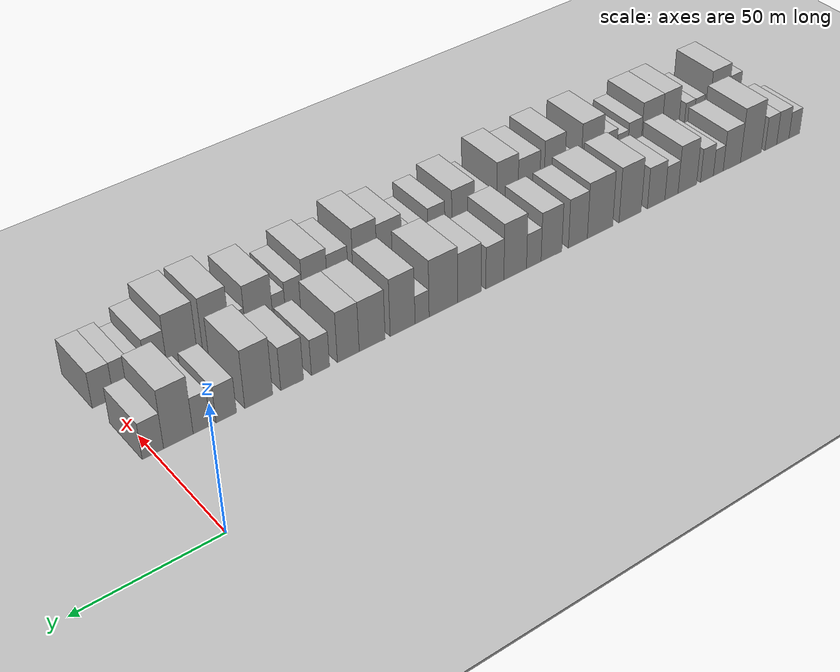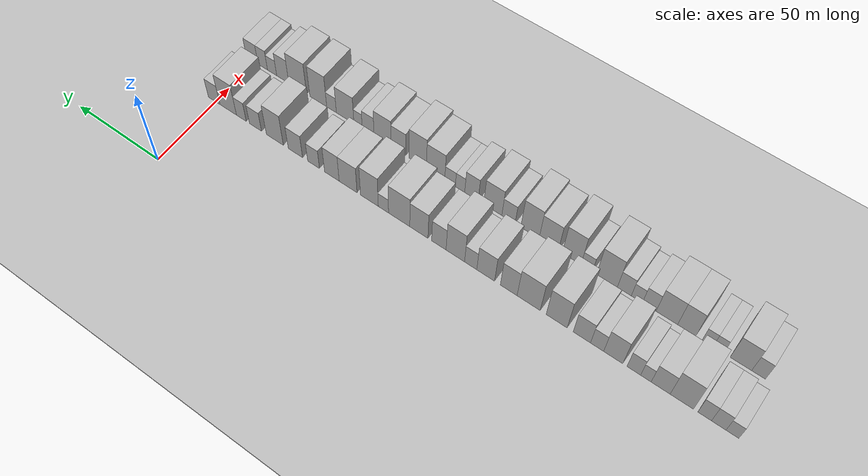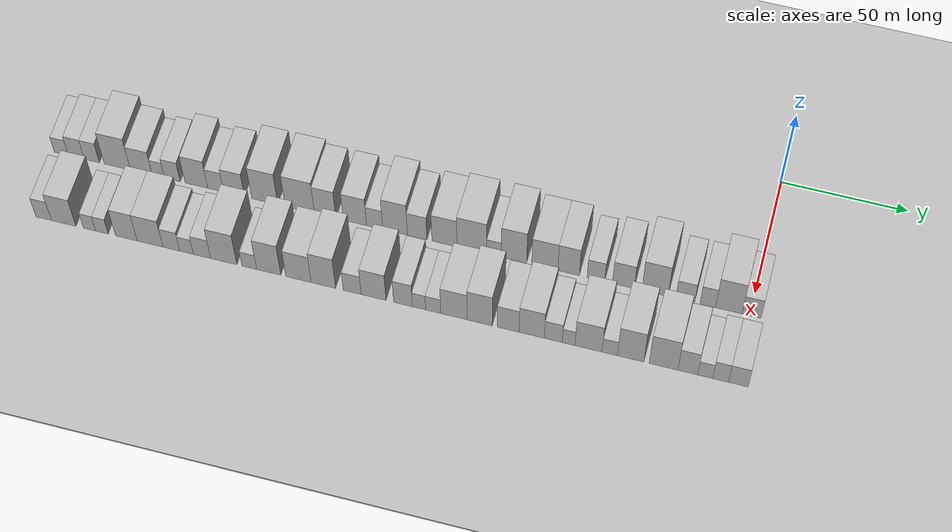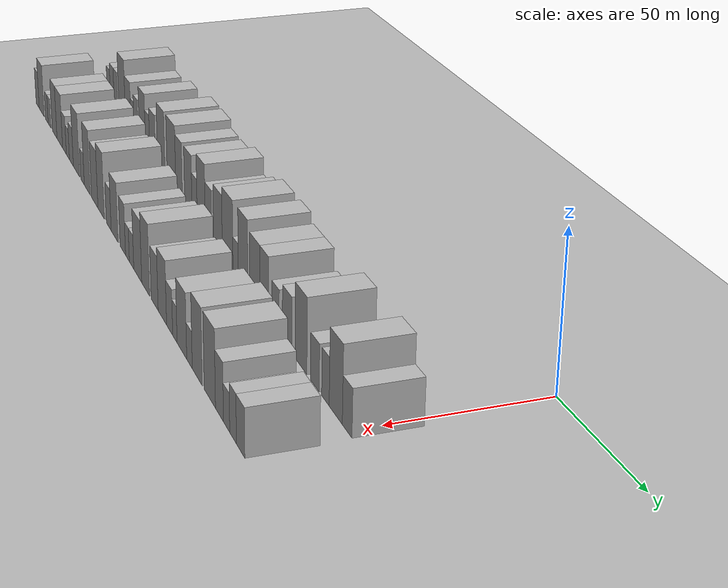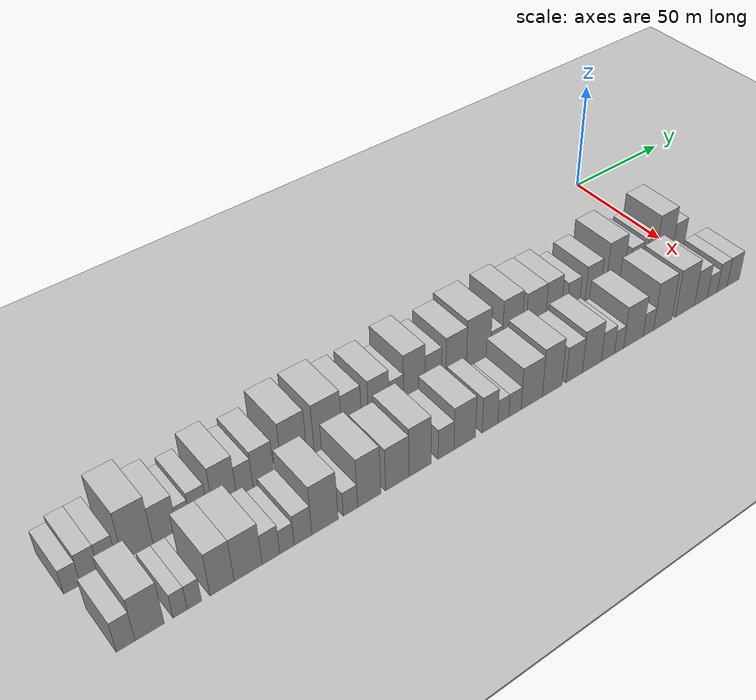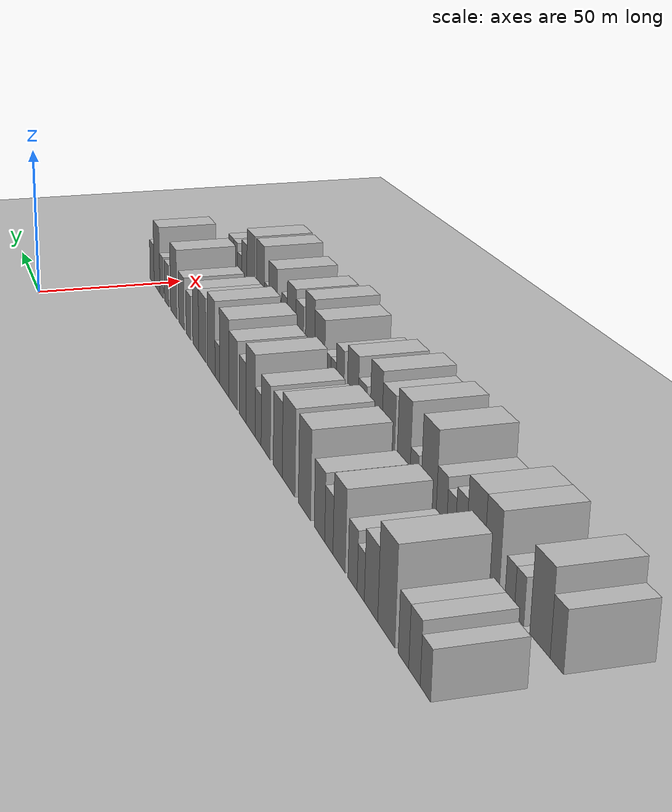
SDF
<sdf version="1.6">
 <world name="default">
  <include><name>ground_plane_1</name><uri>model://HANNAS_ground_plane</uri></include>
  <include>
   <name>ground_plane_2</name>
   <uri>model://HANNAS_ground_plane</uri>
   <pose>100 0 0  0 0 0</pose>
  </include>
  <model name="building_1">
   <static>1</static>
   <pose>50.0000 -275.1089 0 0.000000 0.000000 0.000000</pose>
   <link name="link">
    <pose>0 0 6.00 0 0 0</pose>
    <collision name="collision"><geometry><box><size>20.0000 5.7822 12.0000</size></box></geometry></collision>
    <visual name="visual">
     <cast_shadows>0</cast_shadows>
     <geometry><box><size>20.0000 5.7822 12.0000</size></box></geometry>
     <material>
      <script>
       <uri>model://HANNAS_wall/materials/scripts</uri>
       <uri>model://HANNAS_wall/materials/textures</uri>
       <name>vrc/HANNAS_wall</name>
      </script>
     </material>
    </visual>
   </link>
  </model>
  <model name="building_2">
   <static>1</static>
   <pose>50.0000 -268.9295 0 0.000000 0.000000 0.000000</pose>
   <link name="link">
    <pose>0 0 7.50 0 0 0</pose>
    <collision name="collision"><geometry><box><size>20.0000 6.5766 15.0000</size></box></geometry></collision>
    <visual name="visual">
     <cast_shadows>0</cast_shadows>
     <geometry><box><size>20.0000 6.5766 15.0000</size></box></geometry>
     <material>
      <script>
       <uri>model://HANNAS_wall/materials/scripts</uri>
       <uri>model://HANNAS_wall/materials/textures</uri>
       <name>vrc/HANNAS_wall</name>
      </script>
     </material>
    </visual>
   </link>
  </model>
  <model name="building_3">
   <static>1</static>
   <pose>50.0000 -262.5161 0 0.000000 0.000000 0.000000</pose>
   <link name="link">
    <pose>0 0 7.50 0 0 0</pose>
    <collision name="collision"><geometry><box><size>20.0000 6.2501 15.0000</size></box></geometry></collision>
    <visual name="visual">
     <cast_shadows>0</cast_shadows>
     <geometry><box><size>20.0000 6.2501 15.0000</size></box></geometry>
     <material>
      <script>
       <uri>model://HANNAS_wall/materials/scripts</uri>
       <uri>model://HANNAS_wall/materials/textures</uri>
       <name>vrc/HANNAS_wall</name>
      </script>
     </material>
    </visual>
   </link>
  </model>
  <model name="building_4">
   <static>1</static>
   <pose>50.0000 -251.9828 0 0.000000 0.000000 0.000000</pose>
   <link name="link">
    <pose>0 0 12.00 0 0 0</pose>
    <collision name="collision"><geometry><box><size>20.0000 10.8165 24.0000</size></box></geometry></collision>
    <visual name="visual">
     <cast_shadows>0</cast_shadows>
     <geometry><box><size>20.0000 10.8165 24.0000</size></box></geometry>
     <material>
      <script>
       <uri>model://HANNAS_wall/materials/scripts</uri>
       <uri>model://HANNAS_wall/materials/textures</uri>
       <name>vrc/HANNAS_wall</name>
      </script>
     </material>
    </visual>
   </link>
  </model>
  <model name="building_5">
   <static>1</static>
   <pose>50.0000 -242.1096 0 0.000000 0.000000 0.000000</pose>
   <link name="link">
    <pose>0 0 9.00 0 0 0</pose>
    <collision name="collision"><geometry><box><size>20.0000 8.9300 18.0000</size></box></geometry></collision>
    <visual name="visual">
     <cast_shadows>0</cast_shadows>
     <geometry><box><size>20.0000 8.9300 18.0000</size></box></geometry>
     <material>
      <script>
       <uri>model://HANNAS_wall/materials/scripts</uri>
       <uri>model://HANNAS_wall/materials/textures</uri>
       <name>vrc/HANNAS_wall</name>
      </script>
     </material>
    </visual>
   </link>
  </model>
  <model name="building_6">
   <static>1</static>
   <pose>50.0000 -235.1365 0 0.000000 0.000000 0.000000</pose>
   <link name="link">
    <pose>0 0 6.00 0 0 0</pose>
    <collision name="collision"><geometry><box><size>20.0000 5.0162 12.0000</size></box></geometry></collision>
    <visual name="visual">
     <cast_shadows>0</cast_shadows>
     <geometry><box><size>20.0000 5.0162 12.0000</size></box></geometry>
     <material>
      <script>
       <uri>model://HANNAS_wall/materials/scripts</uri>
       <uri>model://HANNAS_wall/materials/textures</uri>
       <name>vrc/HANNAS_wall</name>
      </script>
     </material>
    </visual>
   </link>
  </model>
  <model name="building_7">
   <static>1</static>
   <pose>50.0000 -229.3773 0 0.000000 0.000000 0.000000</pose>
   <link name="link">
    <pose>0 0 7.50 0 0 0</pose>
    <collision name="collision"><geometry><box><size>20.0000 6.5023 15.0000</size></box></geometry></collision>
    <visual name="visual">
     <cast_shadows>0</cast_shadows>
     <geometry><box><size>20.0000 6.5023 15.0000</size></box></geometry>
     <material>
      <script>
       <uri>model://HANNAS_wall/materials/scripts</uri>
       <uri>model://HANNAS_wall/materials/textures</uri>
       <name>vrc/HANNAS_wall</name>
      </script>
     </material>
    </visual>
   </link>
  </model>
  <model name="building_8">
   <static>1</static>
   <pose>50.0000 -219.4971 0 0.000000 0.000000 0.000000</pose>
   <link name="link">
    <pose>0 0 10.50 0 0 0</pose>
    <collision name="collision"><geometry><box><size>20.0000 9.2581 21.0000</size></box></geometry></collision>
    <visual name="visual">
     <cast_shadows>0</cast_shadows>
     <geometry><box><size>20.0000 9.2581 21.0000</size></box></geometry>
     <material>
      <script>
       <uri>model://HANNAS_wall/materials/scripts</uri>
       <uri>model://HANNAS_wall/materials/textures</uri>
       <name>vrc/HANNAS_wall</name>
      </script>
     </material>
    </visual>
   </link>
  </model>
  <model name="building_9">
   <static>1</static>
   <pose>50.0000 -211.6525 0 0.000000 0.000000 0.000000</pose>
   <link name="link">
    <pose>0 0 7.50 0 0 0</pose>
    <collision name="collision"><geometry><box><size>20.0000 6.4310 15.0000</size></box></geometry></collision>
    <visual name="visual">
     <cast_shadows>0</cast_shadows>
     <geometry><box><size>20.0000 6.4310 15.0000</size></box></geometry>
     <material>
      <script>
       <uri>model://HANNAS_wall/materials/scripts</uri>
       <uri>model://HANNAS_wall/materials/textures</uri>
       <name>vrc/HANNAS_wall</name>
      </script>
     </material>
    </visual>
   </link>
  </model>
  <model name="building_10">
   <static>1</static>
   <pose>50.0000 -204.1754 0 0.000000 0.000000 0.000000</pose>
   <link name="link">
    <pose>0 0 9.00 0 0 0</pose>
    <collision name="collision"><geometry><box><size>20.0000 8.5232 18.0000</size></box></geometry></collision>
    <visual name="visual">
     <cast_shadows>0</cast_shadows>
     <geometry><box><size>20.0000 8.5232 18.0000</size></box></geometry>
     <material>
      <script>
       <uri>model://HANNAS_wall/materials/scripts</uri>
       <uri>model://HANNAS_wall/materials/textures</uri>
       <name>vrc/HANNAS_wall</name>
      </script>
     </material>
    </visual>
   </link>
  </model>
  <model name="building_11">
   <static>1</static>
   <pose>50.0000 -191.6460 0 0.000000 0.000000 0.000000</pose>
   <link name="link">
    <pose>0 0 12.00 0 0 0</pose>
    <collision name="collision"><geometry><box><size>20.0000 10.5356 24.0000</size></box></geometry></collision>
    <visual name="visual">
     <cast_shadows>0</cast_shadows>
     <geometry><box><size>20.0000 10.5356 24.0000</size></box></geometry>
     <material>
      <script>
       <uri>model://HANNAS_wall/materials/scripts</uri>
       <uri>model://HANNAS_wall/materials/textures</uri>
       <name>vrc/HANNAS_wall</name>
      </script>
     </material>
    </visual>
   </link>
  </model>
  <model name="building_12">
   <static>1</static>
   <pose>50.0000 -177.4696 0 0.000000 0.000000 0.000000</pose>
   <link name="link">
    <pose>0 0 12.00 0 0 0</pose>
    <collision name="collision"><geometry><box><size>20.0000 11.8173 24.0000</size></box></geometry></collision>
    <visual name="visual">
     <cast_shadows>0</cast_shadows>
     <geometry><box><size>20.0000 11.8173 24.0000</size></box></geometry>
     <material>
      <script>
       <uri>model://HANNAS_wall/materials/scripts</uri>
       <uri>model://HANNAS_wall/materials/textures</uri>
       <name>vrc/HANNAS_wall</name>
      </script>
     </material>
    </visual>
   </link>
  </model>
  <model name="building_13">
   <static>1</static>
   <pose>50.0000 -167.2322 0 0.000000 0.000000 0.000000</pose>
   <link name="link">
    <pose>0 0 10.50 0 0 0</pose>
    <collision name="collision"><geometry><box><size>20.0000 8.6574 21.0000</size></box></geometry></collision>
    <visual name="visual">
     <cast_shadows>0</cast_shadows>
     <geometry><box><size>20.0000 8.6574 21.0000</size></box></geometry>
     <material>
      <script>
       <uri>model://HANNAS_wall/materials/scripts</uri>
       <uri>model://HANNAS_wall/materials/textures</uri>
       <name>vrc/HANNAS_wall</name>
      </script>
     </material>
    </visual>
   </link>
  </model>
  <model name="building_14">
   <static>1</static>
   <pose>50.0000 -155.2473 0 0.000000 0.000000 0.000000</pose>
   <link name="link">
    <pose>0 0 10.50 0 0 0</pose>
    <collision name="collision"><geometry><box><size>20.0000 9.3124 21.0000</size></box></geometry></collision>
    <visual name="visual">
     <cast_shadows>0</cast_shadows>
     <geometry><box><size>20.0000 9.3124 21.0000</size></box></geometry>
     <material>
      <script>
       <uri>model://HANNAS_wall/materials/scripts</uri>
       <uri>model://HANNAS_wall/materials/textures</uri>
       <name>vrc/HANNAS_wall</name>
      </script>
     </material>
    </visual>
   </link>
  </model>
  <model name="building_15">
   <static>1</static>
   <pose>50.0000 -147.3577 0 0.000000 0.000000 0.000000</pose>
   <link name="link">
    <pose>0 0 7.50 0 0 0</pose>
    <collision name="collision"><geometry><box><size>20.0000 6.4668 15.0000</size></box></geometry></collision>
    <visual name="visual">
     <cast_shadows>0</cast_shadows>
     <geometry><box><size>20.0000 6.4668 15.0000</size></box></geometry>
     <material>
      <script>
       <uri>model://HANNAS_wall/materials/scripts</uri>
       <uri>model://HANNAS_wall/materials/textures</uri>
       <name>vrc/HANNAS_wall</name>
      </script>
     </material>
    </visual>
   </link>
  </model>
  <model name="building_16">
   <static>1</static>
   <pose>50.0000 -139.1707 0 0.000000 0.000000 0.000000</pose>
   <link name="link">
    <pose>0 0 12.00 0 0 0</pose>
    <collision name="collision"><geometry><box><size>20.0000 9.9072 24.0000</size></box></geometry></collision>
    <visual name="visual">
     <cast_shadows>0</cast_shadows>
     <geometry><box><size>20.0000 9.9072 24.0000</size></box></geometry>
     <material>
      <script>
       <uri>model://HANNAS_wall/materials/scripts</uri>
       <uri>model://HANNAS_wall/materials/textures</uri>
       <name>vrc/HANNAS_wall</name>
      </script>
     </material>
    </visual>
   </link>
  </model>
  <model name="building_17">
   <static>1</static>
   <pose>50.0000 -130.3272 0 0.000000 0.000000 0.000000</pose>
   <link name="link">
    <pose>0 0 9.00 0 0 0</pose>
    <collision name="collision"><geometry><box><size>20.0000 7.7798 18.0000</size></box></geometry></collision>
    <visual name="visual">
     <cast_shadows>0</cast_shadows>
     <geometry><box><size>20.0000 7.7798 18.0000</size></box></geometry>
     <material>
      <script>
       <uri>model://HANNAS_wall/materials/scripts</uri>
       <uri>model://HANNAS_wall/materials/textures</uri>
       <name>vrc/HANNAS_wall</name>
      </script>
     </material>
    </visual>
   </link>
  </model>
  <model name="building_18">
   <static>1</static>
   <pose>50.0000 -119.4666 0 0.000000 0.000000 0.000000</pose>
   <link name="link">
    <pose>0 0 10.50 0 0 0</pose>
    <collision name="collision"><geometry><box><size>20.0000 9.9414 21.0000</size></box></geometry></collision>
    <visual name="visual">
     <cast_shadows>0</cast_shadows>
     <geometry><box><size>20.0000 9.9414 21.0000</size></box></geometry>
     <material>
      <script>
       <uri>model://HANNAS_wall/materials/scripts</uri>
       <uri>model://HANNAS_wall/materials/textures</uri>
       <name>vrc/HANNAS_wall</name>
      </script>
     </material>
    </visual>
   </link>
  </model>
  <model name="building_19">
   <static>1</static>
   <pose>50.0000 -108.5932 0 0.000000 0.000000 0.000000</pose>
   <link name="link">
    <pose>0 0 12.00 0 0 0</pose>
    <collision name="collision"><geometry><box><size>20.0000 11.8054 24.0000</size></box></geometry></collision>
    <visual name="visual">
     <cast_shadows>0</cast_shadows>
     <geometry><box><size>20.0000 11.8054 24.0000</size></box></geometry>
     <material>
      <script>
       <uri>model://HANNAS_wall/materials/scripts</uri>
       <uri>model://HANNAS_wall/materials/textures</uri>
       <name>vrc/HANNAS_wall</name>
      </script>
     </material>
    </visual>
   </link>
  </model>
  <model name="building_20">
   <static>1</static>
   <pose>50.0000 -99.8213 0 0.000000 0.000000 0.000000</pose>
   <link name="link">
    <pose>0 0 6.00 0 0 0</pose>
    <collision name="collision"><geometry><box><size>20.0000 5.7384 12.0000</size></box></geometry></collision>
    <visual name="visual">
     <cast_shadows>0</cast_shadows>
     <geometry><box><size>20.0000 5.7384 12.0000</size></box></geometry>
     <material>
      <script>
       <uri>model://HANNAS_wall/materials/scripts</uri>
       <uri>model://HANNAS_wall/materials/textures</uri>
       <name>vrc/HANNAS_wall</name>
      </script>
     </material>
    </visual>
   </link>
  </model>
  <model name="building_21">
   <static>1</static>
   <pose>50.0000 -91.9319 0 0.000000 0.000000 0.000000</pose>
   <link name="link">
    <pose>0 0 12.00 0 0 0</pose>
    <collision name="collision"><geometry><box><size>20.0000 10.0403 24.0000</size></box></geometry></collision>
    <visual name="visual">
     <cast_shadows>0</cast_shadows>
     <geometry><box><size>20.0000 10.0403 24.0000</size></box></geometry>
     <material>
      <script>
       <uri>model://HANNAS_wall/materials/scripts</uri>
       <uri>model://HANNAS_wall/materials/textures</uri>
       <name>vrc/HANNAS_wall</name>
      </script>
     </material>
    </visual>
   </link>
  </model>
  <model name="building_22">
   <static>1</static>
   <pose>50.0000 -79.7915 0 0.000000 0.000000 0.000000</pose>
   <link name="link">
    <pose>0 0 10.50 0 0 0</pose>
    <collision name="collision"><geometry><box><size>20.0000 10.2406 21.0000</size></box></geometry></collision>
    <visual name="visual">
     <cast_shadows>0</cast_shadows>
     <geometry><box><size>20.0000 10.2406 21.0000</size></box></geometry>
     <material>
      <script>
       <uri>model://HANNAS_wall/materials/scripts</uri>
       <uri>model://HANNAS_wall/materials/textures</uri>
       <name>vrc/HANNAS_wall</name>
      </script>
     </material>
    </visual>
   </link>
  </model>
  <model name="building_23">
   <static>1</static>
   <pose>50.0000 -70.4306 0 0.000000 0.000000 0.000000</pose>
   <link name="link">
    <pose>0 0 10.50 0 0 0</pose>
    <collision name="collision"><geometry><box><size>20.0000 8.4810 21.0000</size></box></geometry></collision>
    <visual name="visual">
     <cast_shadows>0</cast_shadows>
     <geometry><box><size>20.0000 8.4810 21.0000</size></box></geometry>
     <material>
      <script>
       <uri>model://HANNAS_wall/materials/scripts</uri>
       <uri>model://HANNAS_wall/materials/textures</uri>
       <name>vrc/HANNAS_wall</name>
      </script>
     </material>
    </visual>
   </link>
  </model>
  <model name="building_24">
   <static>1</static>
   <pose>50.0000 -59.7306 0 0.000000 0.000000 0.000000</pose>
   <link name="link">
    <pose>0 0 7.50 0 0 0</pose>
    <collision name="collision"><geometry><box><size>20.0000 6.9190 15.0000</size></box></geometry></collision>
    <visual name="visual">
     <cast_shadows>0</cast_shadows>
     <geometry><box><size>20.0000 6.9190 15.0000</size></box></geometry>
     <material>
      <script>
       <uri>model://HANNAS_wall/materials/scripts</uri>
       <uri>model://HANNAS_wall/materials/textures</uri>
       <name>vrc/HANNAS_wall</name>
      </script>
     </material>
    </visual>
   </link>
  </model>
  <model name="building_25">
   <static>1</static>
   <pose>50.0000 -49.0280 0 0.000000 0.000000 0.000000</pose>
   <link name="link">
    <pose>0 0 9.00 0 0 0</pose>
    <collision name="collision"><geometry><box><size>20.0000 8.4862 18.0000</size></box></geometry></collision>
    <visual name="visual">
     <cast_shadows>0</cast_shadows>
     <geometry><box><size>20.0000 8.4862 18.0000</size></box></geometry>
     <material>
      <script>
       <uri>model://HANNAS_wall/materials/scripts</uri>
       <uri>model://HANNAS_wall/materials/textures</uri>
       <name>vrc/HANNAS_wall</name>
      </script>
     </material>
    </visual>
   </link>
  </model>
  <model name="building_26">
   <static>1</static>
   <pose>50.0000 -36.6869 0 0.000000 0.000000 0.000000</pose>
   <link name="link">
    <pose>0 0 12.00 0 0 0</pose>
    <collision name="collision"><geometry><box><size>20.0000 10.1959 24.0000</size></box></geometry></collision>
    <visual name="visual">
     <cast_shadows>0</cast_shadows>
     <geometry><box><size>20.0000 10.1959 24.0000</size></box></geometry>
     <material>
      <script>
       <uri>model://HANNAS_wall/materials/scripts</uri>
       <uri>model://HANNAS_wall/materials/textures</uri>
       <name>vrc/HANNAS_wall</name>
      </script>
     </material>
    </visual>
   </link>
  </model>
  <model name="building_27">
   <static>1</static>
   <pose>50.0000 -24.9346 0 0.000000 0.000000 0.000000</pose>
   <link name="link">
    <pose>0 0 7.50 0 0 0</pose>
    <collision name="collision"><geometry><box><size>20.0000 7.3088 15.0000</size></box></geometry></collision>
    <visual name="visual">
     <cast_shadows>0</cast_shadows>
     <geometry><box><size>20.0000 7.3088 15.0000</size></box></geometry>
     <material>
      <script>
       <uri>model://HANNAS_wall/materials/scripts</uri>
       <uri>model://HANNAS_wall/materials/textures</uri>
       <name>vrc/HANNAS_wall</name>
      </script>
     </material>
    </visual>
   </link>
  </model>
  <model name="building_28">
   <static>1</static>
   <pose>50.0000 -16.2581 0 0.000000 0.000000 0.000000</pose>
   <link name="link">
    <pose>0 0 7.50 0 0 0</pose>
    <collision name="collision"><geometry><box><size>20.0000 6.0442 15.0000</size></box></geometry></collision>
    <visual name="visual">
     <cast_shadows>0</cast_shadows>
     <geometry><box><size>20.0000 6.0442 15.0000</size></box></geometry>
     <material>
      <script>
       <uri>model://HANNAS_wall/materials/scripts</uri>
       <uri>model://HANNAS_wall/materials/textures</uri>
       <name>vrc/HANNAS_wall</name>
      </script>
     </material>
    </visual>
   </link>
  </model>
  <model name="building_29">
   <static>1</static>
   <pose>50.0000 -8.1010 0 0.000000 0.000000 0.000000</pose>
   <link name="link">
    <pose>0 0 12.00 0 0 0</pose>
    <collision name="collision"><geometry><box><size>20.0000 10.2699 24.0000</size></box></geometry></collision>
    <visual name="visual">
     <cast_shadows>0</cast_shadows>
     <geometry><box><size>20.0000 10.2699 24.0000</size></box></geometry>
     <material>
      <script>
       <uri>model://HANNAS_wall/materials/scripts</uri>
       <uri>model://HANNAS_wall/materials/textures</uri>
       <name>vrc/HANNAS_wall</name>
      </script>
     </material>
    </visual>
   </link>
  </model>
  <model name="building_30">
   <static>1</static>
   <pose>50.0000 0.6903 0 0.000000 0.000000 0.000000</pose>
   <link name="link">
    <pose>0 0 7.50 0 0 0</pose>
    <collision name="collision"><geometry><box><size>20.0000 7.3128 15.0000</size></box></geometry></collision>
    <visual name="visual">
     <cast_shadows>0</cast_shadows>
     <geometry><box><size>20.0000 7.3128 15.0000</size></box></geometry>
     <material>
      <script>
       <uri>model://HANNAS_wall/materials/scripts</uri>
       <uri>model://HANNAS_wall/materials/textures</uri>
       <name>vrc/HANNAS_wall</name>
      </script>
     </material>
    </visual>
   </link>
  </model>
  <model name="building_63">
   <static>1</static>
   <pose>79.0000 -271.8355 0 0.000000 0.000000 0.000000</pose>
   <link name="link">
    <pose>0 0 7.50 0 0 0</pose>
    <collision name="collision"><geometry><box><size>20.0000 6.3289 15.0000</size></box></geometry></collision>
    <visual name="visual">
     <cast_shadows>0</cast_shadows>
     <geometry><box><size>20.0000 6.3289 15.0000</size></box></geometry>
     <material>
      <script>
       <uri>model://HANNAS_wall/materials/scripts</uri>
       <uri>model://HANNAS_wall/materials/textures</uri>
       <name>vrc/HANNAS_wall</name>
      </script>
     </material>
    </visual>
   </link>
  </model>
  <model name="building_64">
   <static>1</static>
   <pose>79.0000 -263.6766 0 0.000000 0.000000 0.000000</pose>
   <link name="link">
    <pose>0 0 10.50 0 0 0</pose>
    <collision name="collision"><geometry><box><size>20.0000 9.9889 21.0000</size></box></geometry></collision>
    <visual name="visual">
     <cast_shadows>0</cast_shadows>
     <geometry><box><size>20.0000 9.9889 21.0000</size></box></geometry>
     <material>
      <script>
       <uri>model://HANNAS_wall/materials/scripts</uri>
       <uri>model://HANNAS_wall/materials/textures</uri>
       <name>vrc/HANNAS_wall</name>
      </script>
     </material>
    </visual>
   </link>
  </model>
  <model name="building_65">
   <static>1</static>
   <pose>79.0000 -253.1827 0 0.000000 0.000000 0.000000</pose>
   <link name="link">
    <pose>0 0 6.00 0 0 0</pose>
    <collision name="collision"><geometry><box><size>20.0000 4.9988 12.0000</size></box></geometry></collision>
    <visual name="visual">
     <cast_shadows>0</cast_shadows>
     <geometry><box><size>20.0000 4.9988 12.0000</size></box></geometry>
     <material>
      <script>
       <uri>model://HANNAS_wall/materials/scripts</uri>
       <uri>model://HANNAS_wall/materials/textures</uri>
       <name>vrc/HANNAS_wall</name>
      </script>
     </material>
    </visual>
   </link>
  </model>
  <model name="building_66">
   <static>1</static>
   <pose>79.0000 -248.1292 0 0.000000 0.000000 0.000000</pose>
   <link name="link">
    <pose>0 0 6.00 0 0 0</pose>
    <collision name="collision"><geometry><box><size>20.0000 5.1082 12.0000</size></box></geometry></collision>
    <visual name="visual">
     <cast_shadows>0</cast_shadows>
     <geometry><box><size>20.0000 5.1082 12.0000</size></box></geometry>
     <material>
      <script>
       <uri>model://HANNAS_wall/materials/scripts</uri>
       <uri>model://HANNAS_wall/materials/textures</uri>
       <name>vrc/HANNAS_wall</name>
      </script>
     </material>
    </visual>
   </link>
  </model>
  <model name="building_67">
   <static>1</static>
   <pose>79.0000 -238.1894 0 0.000000 0.000000 0.000000</pose>
   <link name="link">
    <pose>0 0 10.50 0 0 0</pose>
    <collision name="collision"><geometry><box><size>20.0000 8.7715 21.0000</size></box></geometry></collision>
    <visual name="visual">
     <cast_shadows>0</cast_shadows>
     <geometry><box><size>20.0000 8.7715 21.0000</size></box></geometry>
     <material>
      <script>
       <uri>model://HANNAS_wall/materials/scripts</uri>
       <uri>model://HANNAS_wall/materials/textures</uri>
       <name>vrc/HANNAS_wall</name>
      </script>
     </material>
    </visual>
   </link>
  </model>
  <model name="building_68">
   <static>1</static>
   <pose>79.0000 -228.5824 0 0.000000 0.000000 0.000000</pose>
   <link name="link">
    <pose>0 0 10.50 0 0 0</pose>
    <collision name="collision"><geometry><box><size>20.0000 10.4423 21.0000</size></box></geometry></collision>
    <visual name="visual">
     <cast_shadows>0</cast_shadows>
     <geometry><box><size>20.0000 10.4423 21.0000</size></box></geometry>
     <material>
      <script>
       <uri>model://HANNAS_wall/materials/scripts</uri>
       <uri>model://HANNAS_wall/materials/textures</uri>
       <name>vrc/HANNAS_wall</name>
      </script>
     </material>
    </visual>
   </link>
  </model>
  <model name="building_69">
   <static>1</static>
   <pose>79.0000 -220.0014 0 0.000000 0.000000 0.000000</pose>
   <link name="link">
    <pose>0 0 7.50 0 0 0</pose>
    <collision name="collision"><geometry><box><size>20.0000 6.7196 15.0000</size></box></geometry></collision>
    <visual name="visual">
     <cast_shadows>0</cast_shadows>
     <geometry><box><size>20.0000 6.7196 15.0000</size></box></geometry>
     <material>
      <script>
       <uri>model://HANNAS_wall/materials/scripts</uri>
       <uri>model://HANNAS_wall/materials/textures</uri>
       <name>vrc/HANNAS_wall</name>
      </script>
     </material>
    </visual>
   </link>
  </model>
  <model name="building_70">
   <static>1</static>
   <pose>79.0000 -213.8903 0 0.000000 0.000000 0.000000</pose>
   <link name="link">
    <pose>0 0 6.00 0 0 0</pose>
    <collision name="collision"><geometry><box><size>20.0000 5.5026 12.0000</size></box></geometry></collision>
    <visual name="visual">
     <cast_shadows>0</cast_shadows>
     <geometry><box><size>20.0000 5.5026 12.0000</size></box></geometry>
     <material>
      <script>
       <uri>model://HANNAS_wall/materials/scripts</uri>
       <uri>model://HANNAS_wall/materials/textures</uri>
       <name>vrc/HANNAS_wall</name>
      </script>
     </material>
    </visual>
   </link>
  </model>
  <model name="building_71">
   <static>1</static>
   <pose>79.0000 -207.6691 0 0.000000 0.000000 0.000000</pose>
   <link name="link">
    <pose>0 0 7.50 0 0 0</pose>
    <collision name="collision"><geometry><box><size>20.0000 6.9399 15.0000</size></box></geometry></collision>
    <visual name="visual">
     <cast_shadows>0</cast_shadows>
     <geometry><box><size>20.0000 6.9399 15.0000</size></box></geometry>
     <material>
      <script>
       <uri>model://HANNAS_wall/materials/scripts</uri>
       <uri>model://HANNAS_wall/materials/textures</uri>
       <name>vrc/HANNAS_wall</name>
      </script>
     </material>
    </visual>
   </link>
  </model>
  <model name="building_72">
   <static>1</static>
   <pose>79.0000 -198.9280 0 0.000000 0.000000 0.000000</pose>
   <link name="link">
    <pose>0 0 12.00 0 0 0</pose>
    <collision name="collision"><geometry><box><size>20.0000 10.5422 24.0000</size></box></geometry></collision>
    <visual name="visual">
     <cast_shadows>0</cast_shadows>
     <geometry><box><size>20.0000 10.5422 24.0000</size></box></geometry>
     <material>
      <script>
       <uri>model://HANNAS_wall/materials/scripts</uri>
       <uri>model://HANNAS_wall/materials/textures</uri>
       <name>vrc/HANNAS_wall</name>
      </script>
     </material>
    </visual>
   </link>
  </model>
  <model name="building_73">
   <static>1</static>
   <pose>79.0000 -188.7251 0 0.000000 0.000000 0.000000</pose>
   <link name="link">
    <pose>0 0 6.00 0 0 0</pose>
    <collision name="collision"><geometry><box><size>20.0000 5.8635 12.0000</size></box></geometry></collision>
    <visual name="visual">
     <cast_shadows>0</cast_shadows>
     <geometry><box><size>20.0000 5.8635 12.0000</size></box></geometry>
     <material>
      <script>
       <uri>model://HANNAS_wall/materials/scripts</uri>
       <uri>model://HANNAS_wall/materials/textures</uri>
       <name>vrc/HANNAS_wall</name>
      </script>
     </material>
    </visual>
   </link>
  </model>
  <model name="building_74">
   <static>1</static>
   <pose>79.0000 -180.9546 0 0.000000 0.000000 0.000000</pose>
   <link name="link">
    <pose>0 0 12.00 0 0 0</pose>
    <collision name="collision"><geometry><box><size>20.0000 9.6776 24.0000</size></box></geometry></collision>
    <visual name="visual">
     <cast_shadows>0</cast_shadows>
     <geometry><box><size>20.0000 9.6776 24.0000</size></box></geometry>
     <material>
      <script>
       <uri>model://HANNAS_wall/materials/scripts</uri>
       <uri>model://HANNAS_wall/materials/textures</uri>
       <name>vrc/HANNAS_wall</name>
      </script>
     </material>
    </visual>
   </link>
  </model>
  <model name="building_75">
   <static>1</static>
   <pose>79.0000 -169.0903 0 0.000000 0.000000 0.000000</pose>
   <link name="link">
    <pose>0 0 10.50 0 0 0</pose>
    <collision name="collision"><geometry><box><size>20.0000 10.0509 21.0000</size></box></geometry></collision>
    <visual name="visual">
     <cast_shadows>0</cast_shadows>
     <geometry><box><size>20.0000 10.0509 21.0000</size></box></geometry>
     <material>
      <script>
       <uri>model://HANNAS_wall/materials/scripts</uri>
       <uri>model://HANNAS_wall/materials/textures</uri>
       <name>vrc/HANNAS_wall</name>
      </script>
     </material>
    </visual>
   </link>
  </model>
  <model name="building_76">
   <static>1</static>
   <pose>79.0000 -159.2171 0 0.000000 0.000000 0.000000</pose>
   <link name="link">
    <pose>0 0 12.00 0 0 0</pose>
    <collision name="collision"><geometry><box><size>20.0000 9.6954 24.0000</size></box></geometry></collision>
    <visual name="visual">
     <cast_shadows>0</cast_shadows>
     <geometry><box><size>20.0000 9.6954 24.0000</size></box></geometry>
     <material>
      <script>
       <uri>model://HANNAS_wall/materials/scripts</uri>
       <uri>model://HANNAS_wall/materials/textures</uri>
       <name>vrc/HANNAS_wall</name>
      </script>
     </material>
    </visual>
   </link>
  </model>
  <model name="building_77">
   <static>1</static>
   <pose>79.0000 -147.8200 0 0.000000 0.000000 0.000000</pose>
   <link name="link">
    <pose>0 0 7.50 0 0 0</pose>
    <collision name="collision"><geometry><box><size>20.0000 7.0988 15.0000</size></box></geometry></collision>
    <visual name="visual">
     <cast_shadows>0</cast_shadows>
     <geometry><box><size>20.0000 7.0988 15.0000</size></box></geometry>
     <material>
      <script>
       <uri>model://HANNAS_wall/materials/scripts</uri>
       <uri>model://HANNAS_wall/materials/textures</uri>
       <name>vrc/HANNAS_wall</name>
      </script>
     </material>
    </visual>
   </link>
  </model>
  <model name="building_78">
   <static>1</static>
   <pose>79.0000 -139.3664 0 0.000000 0.000000 0.000000</pose>
   <link name="link">
    <pose>0 0 10.50 0 0 0</pose>
    <collision name="collision"><geometry><box><size>20.0000 9.8085 21.0000</size></box></geometry></collision>
    <visual name="visual">
     <cast_shadows>0</cast_shadows>
     <geometry><box><size>20.0000 9.8085 21.0000</size></box></geometry>
     <material>
      <script>
       <uri>model://HANNAS_wall/materials/scripts</uri>
       <uri>model://HANNAS_wall/materials/textures</uri>
       <name>vrc/HANNAS_wall</name>
      </script>
     </material>
    </visual>
   </link>
  </model>
  <model name="building_79">
   <static>1</static>
   <pose>79.0000 -127.7725 0 0.000000 0.000000 0.000000</pose>
   <link name="link">
    <pose>0 0 9.00 0 0 0</pose>
    <collision name="collision"><geometry><box><size>20.0000 7.3794 18.0000</size></box></geometry></collision>
    <visual name="visual">
     <cast_shadows>0</cast_shadows>
     <geometry><box><size>20.0000 7.3794 18.0000</size></box></geometry>
     <material>
      <script>
       <uri>model://HANNAS_wall/materials/scripts</uri>
       <uri>model://HANNAS_wall/materials/textures</uri>
       <name>vrc/HANNAS_wall</name>
      </script>
     </material>
    </visual>
   </link>
  </model>
  <model name="building_80">
   <static>1</static>
   <pose>79.0000 -121.4957 0 0.000000 0.000000 0.000000</pose>
   <link name="link">
    <pose>0 0 6.00 0 0 0</pose>
    <collision name="collision"><geometry><box><size>20.0000 5.1743 12.0000</size></box></geometry></collision>
    <visual name="visual">
     <cast_shadows>0</cast_shadows>
     <geometry><box><size>20.0000 5.1743 12.0000</size></box></geometry>
     <material>
      <script>
       <uri>model://HANNAS_wall/materials/scripts</uri>
       <uri>model://HANNAS_wall/materials/textures</uri>
       <name>vrc/HANNAS_wall</name>
      </script>
     </material>
    </visual>
   </link>
  </model>
  <model name="building_81">
   <static>1</static>
   <pose>79.0000 -115.9562 0 0.000000 0.000000 0.000000</pose>
   <link name="link">
    <pose>0 0 6.00 0 0 0</pose>
    <collision name="collision"><geometry><box><size>20.0000 5.9047 12.0000</size></box></geometry></collision>
    <visual name="visual">
     <cast_shadows>0</cast_shadows>
     <geometry><box><size>20.0000 5.9047 12.0000</size></box></geometry>
     <material>
      <script>
       <uri>model://HANNAS_wall/materials/scripts</uri>
       <uri>model://HANNAS_wall/materials/textures</uri>
       <name>vrc/HANNAS_wall</name>
      </script>
     </material>
    </visual>
   </link>
  </model>
  <model name="building_82">
   <static>1</static>
   <pose>79.0000 -107.8306 0 0.000000 0.000000 0.000000</pose>
   <link name="link">
    <pose>0 0 10.50 0 0 0</pose>
    <collision name="collision"><geometry><box><size>20.0000 10.3464 21.0000</size></box></geometry></collision>
    <visual name="visual">
     <cast_shadows>0</cast_shadows>
     <geometry><box><size>20.0000 10.3464 21.0000</size></box></geometry>
     <material>
      <script>
       <uri>model://HANNAS_wall/materials/scripts</uri>
       <uri>model://HANNAS_wall/materials/textures</uri>
       <name>vrc/HANNAS_wall</name>
      </script>
     </material>
    </visual>
   </link>
  </model>
  <model name="building_83">
   <static>1</static>
   <pose>79.0000 -97.7690 0 0.000000 0.000000 0.000000</pose>
   <link name="link">
    <pose>0 0 12.00 0 0 0</pose>
    <collision name="collision"><geometry><box><size>20.0000 9.7768 24.0000</size></box></geometry></collision>
    <visual name="visual">
     <cast_shadows>0</cast_shadows>
     <geometry><box><size>20.0000 9.7768 24.0000</size></box></geometry>
     <material>
      <script>
       <uri>model://HANNAS_wall/materials/scripts</uri>
       <uri>model://HANNAS_wall/materials/textures</uri>
       <name>vrc/HANNAS_wall</name>
      </script>
     </material>
    </visual>
   </link>
  </model>
  <model name="building_84">
   <static>1</static>
   <pose>79.0000 -86.6835 0 0.000000 0.000000 0.000000</pose>
   <link name="link">
    <pose>0 0 9.00 0 0 0</pose>
    <collision name="collision"><geometry><box><size>20.0000 8.3943 18.0000</size></box></geometry></collision>
    <visual name="visual">
     <cast_shadows>0</cast_shadows>
     <geometry><box><size>20.0000 8.3943 18.0000</size></box></geometry>
     <material>
      <script>
       <uri>model://HANNAS_wall/materials/scripts</uri>
       <uri>model://HANNAS_wall/materials/textures</uri>
       <name>vrc/HANNAS_wall</name>
      </script>
     </material>
    </visual>
   </link>
  </model>
  <model name="building_85">
   <static>1</static>
   <pose>79.0000 -77.5521 0 0.000000 0.000000 0.000000</pose>
   <link name="link">
    <pose>0 0 10.50 0 0 0</pose>
    <collision name="collision"><geometry><box><size>20.0000 9.8685 21.0000</size></box></geometry></collision>
    <visual name="visual">
     <cast_shadows>0</cast_shadows>
     <geometry><box><size>20.0000 9.8685 21.0000</size></box></geometry>
     <material>
      <script>
       <uri>model://HANNAS_wall/materials/scripts</uri>
       <uri>model://HANNAS_wall/materials/textures</uri>
       <name>vrc/HANNAS_wall</name>
      </script>
     </material>
    </visual>
   </link>
  </model>
  <model name="building_86">
   <static>1</static>
   <pose>79.0000 -69.1472 0 0.000000 0.000000 0.000000</pose>
   <link name="link">
    <pose>0 0 7.50 0 0 0</pose>
    <collision name="collision"><geometry><box><size>20.0000 6.9412 15.0000</size></box></geometry></collision>
    <visual name="visual">
     <cast_shadows>0</cast_shadows>
     <geometry><box><size>20.0000 6.9412 15.0000</size></box></geometry>
     <material>
      <script>
       <uri>model://HANNAS_wall/materials/scripts</uri>
       <uri>model://HANNAS_wall/materials/textures</uri>
       <name>vrc/HANNAS_wall</name>
      </script>
     </material>
    </visual>
   </link>
  </model>
  <model name="building_87">
   <static>1</static>
   <pose>79.0000 -63.2422 0 0.000000 0.000000 0.000000</pose>
   <link name="link">
    <pose>0 0 6.00 0 0 0</pose>
    <collision name="collision"><geometry><box><size>20.0000 4.8688 12.0000</size></box></geometry></collision>
    <visual name="visual">
     <cast_shadows>0</cast_shadows>
     <geometry><box><size>20.0000 4.8688 12.0000</size></box></geometry>
     <material>
      <script>
       <uri>model://HANNAS_wall/materials/scripts</uri>
       <uri>model://HANNAS_wall/materials/textures</uri>
       <name>vrc/HANNAS_wall</name>
      </script>
     </material>
    </visual>
   </link>
  </model>
  <model name="building_88">
   <static>1</static>
   <pose>79.0000 -55.5717 0 0.000000 0.000000 0.000000</pose>
   <link name="link">
    <pose>0 0 10.50 0 0 0</pose>
    <collision name="collision"><geometry><box><size>20.0000 10.4721 21.0000</size></box></geometry></collision>
    <visual name="visual">
     <cast_shadows>0</cast_shadows>
     <geometry><box><size>20.0000 10.4721 21.0000</size></box></geometry>
     <material>
      <script>
       <uri>model://HANNAS_wall/materials/scripts</uri>
       <uri>model://HANNAS_wall/materials/textures</uri>
       <name>vrc/HANNAS_wall</name>
      </script>
     </material>
    </visual>
   </link>
  </model>
  <model name="building_89">
   <static>1</static>
   <pose>79.0000 -47.4246 0 0.000000 0.000000 0.000000</pose>
   <link name="link">
    <pose>0 0 6.00 0 0 0</pose>
    <collision name="collision"><geometry><box><size>20.0000 5.8220 12.0000</size></box></geometry></collision>
    <visual name="visual">
     <cast_shadows>0</cast_shadows>
     <geometry><box><size>20.0000 5.8220 12.0000</size></box></geometry>
     <material>
      <script>
       <uri>model://HANNAS_wall/materials/scripts</uri>
       <uri>model://HANNAS_wall/materials/textures</uri>
       <name>vrc/HANNAS_wall</name>
      </script>
     </material>
    </visual>
   </link>
  </model>
  <model name="building_90">
   <static>1</static>
   <pose>79.0000 -39.4075 0 0.000000 0.000000 0.000000</pose>
   <link name="link">
    <pose>0 0 12.00 0 0 0</pose>
    <collision name="collision"><geometry><box><size>20.0000 10.2122 24.0000</size></box></geometry></collision>
    <visual name="visual">
     <cast_shadows>0</cast_shadows>
     <geometry><box><size>20.0000 10.2122 24.0000</size></box></geometry>
     <material>
      <script>
       <uri>model://HANNAS_wall/materials/scripts</uri>
       <uri>model://HANNAS_wall/materials/textures</uri>
       <name>vrc/HANNAS_wall</name>
      </script>
     </material>
    </visual>
   </link>
  </model>
  <model name="building_91">
   <static>1</static>
   <pose>79.0000 -26.8087 0 0.000000 0.000000 0.000000</pose>
   <link name="link">
    <pose>0 0 12.00 0 0 0</pose>
    <collision name="collision"><geometry><box><size>20.0000 10.9853 24.0000</size></box></geometry></collision>
    <visual name="visual">
     <cast_shadows>0</cast_shadows>
     <geometry><box><size>20.0000 10.9853 24.0000</size></box></geometry>
     <material>
      <script>
       <uri>model://HANNAS_wall/materials/scripts</uri>
       <uri>model://HANNAS_wall/materials/textures</uri>
       <name>vrc/HANNAS_wall</name>
      </script>
     </material>
    </visual>
   </link>
  </model>
  <model name="building_92">
   <static>1</static>
   <pose>79.0000 -17.5563 0 0.000000 0.000000 0.000000</pose>
   <link name="link">
    <pose>0 0 9.00 0 0 0</pose>
    <collision name="collision"><geometry><box><size>20.0000 7.5196 18.0000</size></box></geometry></collision>
    <visual name="visual">
     <cast_shadows>0</cast_shadows>
     <geometry><box><size>20.0000 7.5196 18.0000</size></box></geometry>
     <material>
      <script>
       <uri>model://HANNAS_wall/materials/scripts</uri>
       <uri>model://HANNAS_wall/materials/textures</uri>
       <name>vrc/HANNAS_wall</name>
      </script>
     </material>
    </visual>
   </link>
  </model>
  <model name="building_93">
   <static>1</static>
   <pose>79.0000 -10.9176 0 0.000000 0.000000 0.000000</pose>
   <link name="link">
    <pose>0 0 6.00 0 0 0</pose>
    <collision name="collision"><geometry><box><size>20.0000 5.7579 12.0000</size></box></geometry></collision>
    <visual name="visual">
     <cast_shadows>0</cast_shadows>
     <geometry><box><size>20.0000 5.7579 12.0000</size></box></geometry>
     <material>
      <script>
       <uri>model://HANNAS_wall/materials/scripts</uri>
       <uri>model://HANNAS_wall/materials/textures</uri>
       <name>vrc/HANNAS_wall</name>
      </script>
     </material>
    </visual>
   </link>
  </model>
  <model name="building_94">
   <static>1</static>
   <pose>79.0000 -5.0338 0 0.000000 0.000000 0.000000</pose>
   <link name="link">
    <pose>0 0 7.50 0 0 0</pose>
    <collision name="collision"><geometry><box><size>20.0000 6.0096 15.0000</size></box></geometry></collision>
    <visual name="visual">
     <cast_shadows>0</cast_shadows>
     <geometry><box><size>20.0000 6.0096 15.0000</size></box></geometry>
     <material>
      <script>
       <uri>model://HANNAS_wall/materials/scripts</uri>
       <uri>model://HANNAS_wall/materials/textures</uri>
       <name>vrc/HANNAS_wall</name>
      </script>
     </material>
    </visual>
   </link>
  </model>
  <model name="building_95">
   <static>1</static>
   <pose>79.0000 1.6876 0 0.000000 0.000000 0.000000</pose>
   <link name="link">
    <pose>0 0 7.50 0 0 0</pose>
    <collision name="collision"><geometry><box><size>20.0000 7.4332 15.0000</size></box></geometry></collision>
    <visual name="visual">
     <cast_shadows>0</cast_shadows>
     <geometry><box><size>20.0000 7.4332 15.0000</size></box></geometry>
     <material>
      <script>
       <uri>model://HANNAS_wall/materials/scripts</uri>
       <uri>model://HANNAS_wall/materials/textures</uri>
       <name>vrc/HANNAS_wall</name>
      </script>
     </material>
    </visual>
   </link>
  </model>
 </world>
</sdf>
